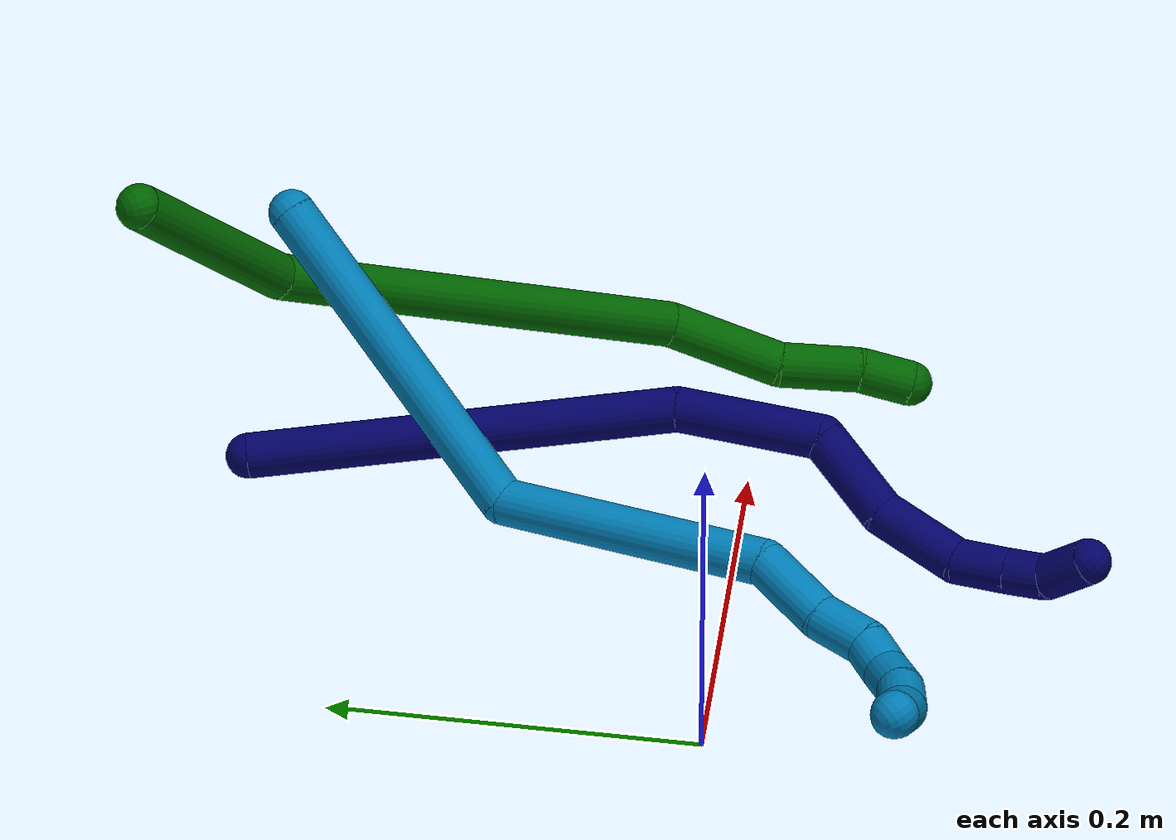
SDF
<sdf version="1.7">
 <world name="default">
  <model name="6">
   <static>0</static>
   <link name="6">
    <collision name="collision-cylinder-e_1_1_4">
     <pose>-0.015894 -0.036842 -0.04217 2.42353 -0.27656 -0.710202</pose>
     <geometry><cylinder><radius>0.0125</radius><length>0.116418</length></cylinder></geometry>
     <surface>
      <friction><ode><mu>1.16</mu><mu2>1.16</mu2><slip1>0</slip1><slip2>0</slip2></ode></friction>
      <contact><ode><kp>1e+06</kp><kd>1</kd><max_vel>0</max_vel><min_depth>0.001</min_depth></ode></contact>
     </surface>
    </collision>
    <visual name="visual-cylinder-e_1_1_4">
     <pose>-0.015894 -0.036842 -0.04217 2.42353 -0.27656 -0.710202</pose>
     <geometry><cylinder><radius>0.0125</radius><length>0.116418</length></cylinder></geometry>
     <material><ambient>0 0.392157 0.003922 1</ambient></material>
    </visual>
    <collision name="collision-cylinder-e_2_4_5">
     <pose>-0.033679 -0.121548 -0.197369 2.74102 -0.015405 -0.075851</pose>
     <geometry><cylinder><radius>0.0125</radius><length>0.245519</length></cylinder></geometry>
     <surface>
      <friction><ode><mu>1.16</mu><mu2>1.16</mu2><slip1>0</slip1><slip2>0</slip2></ode></friction>
      <contact><ode><kp>1e+06</kp><kd>1</kd><max_vel>0</max_vel><min_depth>0.001</min_depth></ode></contact>
     </surface>
    </collision>
    <visual name="visual-cylinder-e_2_4_5">
     <pose>-0.033679 -0.121548 -0.197369 2.74102 -0.015405 -0.075851</pose>
     <geometry><cylinder><radius>0.0125</radius><length>0.245519</length></cylinder></geometry>
     <material><ambient>0 0.392157 0.003922 1</ambient></material>
    </visual>
    <collision name="collision-cylinder-e_3_5_6">
     <pose>-0.019826 -0.183684 -0.334535 2.60758 0.511591 1.5259</pose>
     <geometry><cylinder><radius>0.0125</radius><length>0.064317</length></cylinder></geometry>
     <surface>
      <friction><ode><mu>1.16</mu><mu2>1.16</mu2><slip1>0</slip1><slip2>0</slip2></ode></friction>
      <contact><ode><kp>1e+06</kp><kd>1</kd><max_vel>0</max_vel><min_depth>0.001</min_depth></ode></contact>
     </surface>
    </collision>
    <visual name="visual-cylinder-e_3_5_6">
     <pose>-0.019826 -0.183684 -0.334535 2.60758 0.511591 1.5259</pose>
     <geometry><cylinder><radius>0.0125</radius><length>0.064317</length></cylinder></geometry>
     <material><ambient>0 0.392157 0.003922 1</ambient></material>
    </visual>
    <collision name="collision-cylinder-e_4_6_7">
     <pose>0.004766 -0.202615 -0.378602 2.91199 0.408064 2.12474</pose>
     <geometry><cylinder><radius>0.0125</radius><length>0.044597</length></cylinder></geometry>
     <surface>
      <friction><ode><mu>1.16</mu><mu2>1.16</mu2><slip1>0</slip1><slip2>0</slip2></ode></friction>
      <contact><ode><kp>1e+06</kp><kd>1</kd><max_vel>0</max_vel><min_depth>0.001</min_depth></ode></contact>
     </surface>
    </collision>
    <visual name="visual-cylinder-e_4_6_7">
     <pose>0.004766 -0.202615 -0.378602 2.91199 0.408064 2.12474</pose>
     <geometry><cylinder><radius>0.0125</radius><length>0.044597</length></cylinder></geometry>
     <material><ambient>0 0.392157 0.003922 1</ambient></material>
    </visual>
    <collision name="collision-cylinder-e_5_7_2">
     <pose>0.019201 -0.213105 -0.410666 2.6936 0.393311 1.43712</pose>
     <geometry><cylinder><radius>0.0125</radius><length>0.029148</length></cylinder></geometry>
     <surface>
      <friction><ode><mu>1.16</mu><mu2>1.16</mu2><slip1>0</slip1><slip2>0</slip2></ode></friction>
      <contact><ode><kp>1e+06</kp><kd>1</kd><max_vel>0</max_vel><min_depth>0.001</min_depth></ode></contact>
     </surface>
    </collision>
    <visual name="visual-cylinder-e_5_7_2">
     <pose>0.019201 -0.213105 -0.410666 2.6936 0.393311 1.43712</pose>
     <geometry><cylinder><radius>0.0125</radius><length>0.029148</length></cylinder></geometry>
     <material><ambient>0 0.392157 0.003922 1</ambient></material>
    </visual>
    <collision name="collision-sphere-2">
     <pose>0.024786 -0.218935 -0.422799 0 -0 0</pose>
     <geometry><sphere><radius>0.0125</radius></sphere></geometry>
     <surface>
      <friction><ode><mu>1.16</mu><mu2>1.16</mu2><slip1>0</slip1><slip2>0</slip2></ode></friction>
      <contact><ode><kp>1e+06</kp><kd>1</kd><max_vel>0</max_vel><min_depth>0.001</min_depth></ode></contact>
     </surface>
    </collision>
    <visual name="visual-sphere-2">
     <pose>0.024786 -0.218935 -0.422799 0 -0 0</pose>
     <geometry><sphere><radius>0.0125</radius></sphere></geometry>
     <material><ambient>0 0.392157 0.003922 1</ambient></material>
    </visual>
    <collision name="collision-sphere-7">
     <pose>0.013615 -0.207274 -0.398533 0 -0 0</pose>
     <geometry><sphere><radius>0.0125</radius></sphere></geometry>
     <surface>
      <friction><ode><mu>1.16</mu><mu2>1.16</mu2><slip1>0</slip1><slip2>0</slip2></ode></friction>
      <contact><ode><kp>1e+06</kp><kd>1</kd><max_vel>0</max_vel><min_depth>0.001</min_depth></ode></contact>
     </surface>
    </collision>
    <visual name="visual-sphere-7">
     <pose>0.013615 -0.207274 -0.398533 0 -0 0</pose>
     <geometry><sphere><radius>0.0125</radius></sphere></geometry>
     <material><ambient>0 0.392157 0.003922 1</ambient></material>
    </visual>
    <collision name="collision-sphere-6">
     <pose>-0.004083 -0.197957 -0.358672 0 -0 0</pose>
     <geometry><sphere><radius>0.0125</radius></sphere></geometry>
     <surface>
      <friction><ode><mu>1.16</mu><mu2>1.16</mu2><slip1>0</slip1><slip2>0</slip2></ode></friction>
      <contact><ode><kp>1e+06</kp><kd>1</kd><max_vel>0</max_vel><min_depth>0.001</min_depth></ode></contact>
     </surface>
    </collision>
    <visual name="visual-sphere-6">
     <pose>-0.004083 -0.197957 -0.358672 0 -0 0</pose>
     <geometry><sphere><radius>0.0125</radius></sphere></geometry>
     <material><ambient>0 0.392157 0.003922 1</ambient></material>
    </visual>
    <collision name="collision-sphere-5">
     <pose>-0.03557 -0.169412 -0.310398 0 -0 0</pose>
     <geometry><sphere><radius>0.0125</radius></sphere></geometry>
     <surface>
      <friction><ode><mu>1.16</mu><mu2>1.16</mu2><slip1>0</slip1><slip2>0</slip2></ode></friction>
      <contact><ode><kp>1e+06</kp><kd>1</kd><max_vel>0</max_vel><min_depth>0.001</min_depth></ode></contact>
     </surface>
    </collision>
    <visual name="visual-sphere-5">
     <pose>-0.03557 -0.169412 -0.310398 0 -0 0</pose>
     <geometry><sphere><radius>0.0125</radius></sphere></geometry>
     <material><ambient>0 0.392157 0.003922 1</ambient></material>
    </visual>
    <collision name="collision-sphere-1">
     <geometry><sphere><radius>0.0125</radius></sphere></geometry>
     <surface>
      <friction><ode><mu>1.16</mu><mu2>1.16</mu2><slip1>0</slip1><slip2>0</slip2></ode></friction>
      <contact><ode><kp>1e+06</kp><kd>1</kd><max_vel>0</max_vel><min_depth>0.001</min_depth></ode></contact>
     </surface>
    </collision>
    <visual name="visual-sphere-1">
     <geometry><sphere><radius>0.0125</radius></sphere></geometry>
     <material><ambient>0 0.392157 0.003922 1</ambient></material>
    </visual>
    <collision name="collision-sphere-4">
     <pose>-0.031788 -0.073684 -0.084341 0 -0 0</pose>
     <geometry><sphere><radius>0.0125</radius></sphere></geometry>
     <surface>
      <friction><ode><mu>1.16</mu><mu2>1.16</mu2><slip1>0</slip1><slip2>0</slip2></ode></friction>
      <contact><ode><kp>1e+06</kp><kd>1</kd><max_vel>0</max_vel><min_depth>0.001</min_depth></ode></contact>
     </surface>
    </collision>
    <visual name="visual-sphere-4">
     <pose>-0.031788 -0.073684 -0.084341 0 -0 0</pose>
     <geometry><sphere><radius>0.0125</radius></sphere></geometry>
     <material><ambient>0 0.392157 0.003922 1</ambient></material>
    </visual>
    <inertial>
     <pose>-0.021244 -0.122386 -0.207477 0 -0 0</pose>
     <mass>0.5</mass>
     <inertia>
      <ixx>0.001189</ixx>
      <ixy>0</ixy>
      <ixz>0</ixz>
      <iyy>-0.001357</iyy>
      <iyz>0</iyz>
      <izz>0.000591</izz>
     </inertia>
    </inertial>
   </link>
   <pose>0.12007 0.311104 0.23494 1.49951 -0.366919 -2.48948</pose>
  </model>
  <model name="7">
   <static>0</static>
   <link name="7">
    <collision name="collision-cylinder-e_1_1_4">
     <pose>0.024356 -0.090355 0.071676 0.900174 0.208122 0.100836</pose>
     <geometry><cylinder><radius>0.0125</radius><length>0.235752</length></cylinder></geometry>
     <surface>
      <friction><ode><mu>1.16</mu><mu2>1.16</mu2><slip1>0</slip1><slip2>0</slip2></ode></friction>
      <contact><ode><kp>1e+06</kp><kd>1</kd><max_vel>0</max_vel><min_depth>0.001</min_depth></ode></contact>
     </surface>
    </collision>
    <visual name="visual-cylinder-e_1_1_4">
     <pose>0.024356 -0.090355 0.071676 0.900174 0.208122 0.100836</pose>
     <geometry><cylinder><radius>0.0125</radius><length>0.235752</length></cylinder></geometry>
     <material><ambient>0.003922 0 0.403922 1</ambient></material>
    </visual>
    <collision name="collision-cylinder-e_2_4_5">
     <pose>0.065968 -0.202044 0.173956 0.608757 0.433247 0.13805</pose>
     <geometry><cylinder><radius>0.0125</radius><length>0.082208</length></cylinder></geometry>
     <surface>
      <friction><ode><mu>1.16</mu><mu2>1.16</mu2><slip1>0</slip1><slip2>0</slip2></ode></friction>
      <contact><ode><kp>1e+06</kp><kd>1</kd><max_vel>0</max_vel><min_depth>0.001</min_depth></ode></contact>
     </surface>
    </collision>
    <visual name="visual-cylinder-e_2_4_5">
     <pose>0.065968 -0.202044 0.173956 0.608757 0.433247 0.13805</pose>
     <geometry><cylinder><radius>0.0125</radius><length>0.082208</length></cylinder></geometry>
     <material><ambient>0.003922 0 0.403922 1</ambient></material>
    </visual>
    <collision name="collision-cylinder-e_3_5_6">
     <pose>0.091905 -0.219734 0.228876 -0.148743 0.339398 -0.025532</pose>
     <geometry><cylinder><radius>0.0125</radius><length>0.052147</length></cylinder></geometry>
     <surface>
      <friction><ode><mu>1.16</mu><mu2>1.16</mu2><slip1>0</slip1><slip2>0</slip2></ode></friction>
      <contact><ode><kp>1e+06</kp><kd>1</kd><max_vel>0</max_vel><min_depth>0.001</min_depth></ode></contact>
     </surface>
    </collision>
    <visual name="visual-cylinder-e_3_5_6">
     <pose>0.091905 -0.219734 0.228876 -0.148743 0.339398 -0.025532</pose>
     <geometry><cylinder><radius>0.0125</radius><length>0.052147</length></cylinder></geometry>
     <material><ambient>0.003922 0 0.403922 1</ambient></material>
    </visual>
    <collision name="collision-cylinder-e_4_6_7">
     <pose>0.113236 -0.220224 0.274365 0.192775 0.530365 0.052504</pose>
     <geometry><cylinder><radius>0.0125</radius><length>0.05002</length></cylinder></geometry>
     <surface>
      <friction><ode><mu>1.16</mu><mu2>1.16</mu2><slip1>0</slip1><slip2>0</slip2></ode></friction>
      <contact><ode><kp>1e+06</kp><kd>1</kd><max_vel>0</max_vel><min_depth>0.001</min_depth></ode></contact>
     </surface>
    </collision>
    <visual name="visual-cylinder-e_4_6_7">
     <pose>0.113236 -0.220224 0.274365 0.192775 0.530365 0.052504</pose>
     <geometry><cylinder><radius>0.0125</radius><length>0.05002</length></cylinder></geometry>
     <material><ambient>0.003922 0 0.403922 1</ambient></material>
    </visual>
    <collision name="collision-cylinder-e_5_7_8">
     <pose>0.133552 -0.231791 0.305862 0.624114 0.542308 0.178886</pose>
     <geometry><cylinder><radius>0.0125</radius><length>0.029702</length></cylinder></geometry>
     <surface>
      <friction><ode><mu>1.16</mu><mu2>1.16</mu2><slip1>0</slip1><slip2>0</slip2></ode></friction>
      <contact><ode><kp>1e+06</kp><kd>1</kd><max_vel>0</max_vel><min_depth>0.001</min_depth></ode></contact>
     </surface>
    </collision>
    <visual name="visual-cylinder-e_5_7_8">
     <pose>0.133552 -0.231791 0.305862 0.624114 0.542308 0.178886</pose>
     <geometry><cylinder><radius>0.0125</radius><length>0.029702</length></cylinder></geometry>
     <material><ambient>0.003922 0 0.403922 1</ambient></material>
    </visual>
    <collision name="collision-cylinder-e_6_8_9">
     <pose>0.146719 -0.244769 0.323358 0.657993 0.545373 0.190372</pose>
     <geometry><cylinder><radius>0.0125</radius><length>0.021212</length></cylinder></geometry>
     <surface>
      <friction><ode><mu>1.16</mu><mu2>1.16</mu2><slip1>0</slip1><slip2>0</slip2></ode></friction>
      <contact><ode><kp>1e+06</kp><kd>1</kd><max_vel>0</max_vel><min_depth>0.001</min_depth></ode></contact>
     </surface>
    </collision>
    <visual name="visual-cylinder-e_6_8_9">
     <pose>0.146719 -0.244769 0.323358 0.657993 0.545373 0.190372</pose>
     <geometry><cylinder><radius>0.0125</radius><length>0.021212</length></cylinder></geometry>
     <material><ambient>0.003922 0 0.403922 1</ambient></material>
    </visual>
    <collision name="collision-cylinder-e_7_9_2">
     <pose>0.162087 -0.260519 0.333393 1.29752 0.749664 0.57983</pose>
     <geometry><cylinder><radius>0.0125</radius><length>0.028959</length></cylinder></geometry>
     <surface>
      <friction><ode><mu>1.16</mu><mu2>1.16</mu2><slip1>0</slip1><slip2>0</slip2></ode></friction>
      <contact><ode><kp>1e+06</kp><kd>1</kd><max_vel>0</max_vel><min_depth>0.001</min_depth></ode></contact>
     </surface>
    </collision>
    <visual name="visual-cylinder-e_7_9_2">
     <pose>0.162087 -0.260519 0.333393 1.29752 0.749664 0.57983</pose>
     <geometry><cylinder><radius>0.0125</radius><length>0.028959</length></cylinder></geometry>
     <material><ambient>0.003922 0 0.403922 1</ambient></material>
    </visual>
    <collision name="collision-sphere-2">
     <pose>0.171953 -0.270723 0.336253 0 -0 0</pose>
     <geometry><sphere><radius>0.0125</radius></sphere></geometry>
     <surface>
      <friction><ode><mu>1.16</mu><mu2>1.16</mu2><slip1>0</slip1><slip2>0</slip2></ode></friction>
      <contact><ode><kp>1e+06</kp><kd>1</kd><max_vel>0</max_vel><min_depth>0.001</min_depth></ode></contact>
     </surface>
    </collision>
    <visual name="visual-sphere-2">
     <pose>0.171953 -0.270723 0.336253 0 -0 0</pose>
     <geometry><sphere><radius>0.0125</radius></sphere></geometry>
     <material><ambient>0.003922 0 0.403922 1</ambient></material>
    </visual>
    <collision name="collision-sphere-9">
     <pose>0.152221 -0.250314 0.330533 0 -0 0</pose>
     <geometry><sphere><radius>0.0125</radius></sphere></geometry>
     <surface>
      <friction><ode><mu>1.16</mu><mu2>1.16</mu2><slip1>0</slip1><slip2>0</slip2></ode></friction>
      <contact><ode><kp>1e+06</kp><kd>1</kd><max_vel>0</max_vel><min_depth>0.001</min_depth></ode></contact>
     </surface>
    </collision>
    <visual name="visual-sphere-9">
     <pose>0.152221 -0.250314 0.330533 0 -0 0</pose>
     <geometry><sphere><radius>0.0125</radius></sphere></geometry>
     <material><ambient>0.003922 0 0.403922 1</ambient></material>
    </visual>
    <collision name="collision-sphere-4">
     <pose>0.048712 -0.180711 0.143352 0 -0 0</pose>
     <geometry><sphere><radius>0.0125</radius></sphere></geometry>
     <surface>
      <friction><ode><mu>1.16</mu><mu2>1.16</mu2><slip1>0</slip1><slip2>0</slip2></ode></friction>
      <contact><ode><kp>1e+06</kp><kd>1</kd><max_vel>0</max_vel><min_depth>0.001</min_depth></ode></contact>
     </surface>
    </collision>
    <visual name="visual-sphere-4">
     <pose>0.048712 -0.180711 0.143352 0 -0 0</pose>
     <geometry><sphere><radius>0.0125</radius></sphere></geometry>
     <material><ambient>0.003922 0 0.403922 1</ambient></material>
    </visual>
    <collision name="collision-sphere-1">
     <geometry><sphere><radius>0.0125</radius></sphere></geometry>
     <surface>
      <friction><ode><mu>1.16</mu><mu2>1.16</mu2><slip1>0</slip1><slip2>0</slip2></ode></friction>
      <contact><ode><kp>1e+06</kp><kd>1</kd><max_vel>0</max_vel><min_depth>0.001</min_depth></ode></contact>
     </surface>
    </collision>
    <visual name="visual-sphere-1">
     <geometry><sphere><radius>0.0125</radius></sphere></geometry>
     <material><ambient>0.003922 0 0.403922 1</ambient></material>
    </visual>
    <collision name="collision-sphere-8">
     <pose>0.141217 -0.239224 0.316184 0 -0 0</pose>
     <geometry><sphere><radius>0.0125</radius></sphere></geometry>
     <surface>
      <friction><ode><mu>1.16</mu><mu2>1.16</mu2><slip1>0</slip1><slip2>0</slip2></ode></friction>
      <contact><ode><kp>1e+06</kp><kd>1</kd><max_vel>0</max_vel><min_depth>0.001</min_depth></ode></contact>
     </surface>
    </collision>
    <visual name="visual-sphere-8">
     <pose>0.141217 -0.239224 0.316184 0 -0 0</pose>
     <geometry><sphere><radius>0.0125</radius></sphere></geometry>
     <material><ambient>0.003922 0 0.403922 1</ambient></material>
    </visual>
    <collision name="collision-sphere-5">
     <pose>0.083224 -0.223378 0.204561 0 -0 0</pose>
     <geometry><sphere><radius>0.0125</radius></sphere></geometry>
     <surface>
      <friction><ode><mu>1.16</mu><mu2>1.16</mu2><slip1>0</slip1><slip2>0</slip2></ode></friction>
      <contact><ode><kp>1e+06</kp><kd>1</kd><max_vel>0</max_vel><min_depth>0.001</min_depth></ode></contact>
     </surface>
    </collision>
    <visual name="visual-sphere-5">
     <pose>0.083224 -0.223378 0.204561 0 -0 0</pose>
     <geometry><sphere><radius>0.0125</radius></sphere></geometry>
     <material><ambient>0.003922 0 0.403922 1</ambient></material>
    </visual>
    <collision name="collision-sphere-6">
     <pose>0.100585 -0.216091 0.25319 0 -0 0</pose>
     <geometry><sphere><radius>0.0125</radius></sphere></geometry>
     <surface>
      <friction><ode><mu>1.16</mu><mu2>1.16</mu2><slip1>0</slip1><slip2>0</slip2></ode></friction>
      <contact><ode><kp>1e+06</kp><kd>1</kd><max_vel>0</max_vel><min_depth>0.001</min_depth></ode></contact>
     </surface>
    </collision>
    <visual name="visual-sphere-6">
     <pose>0.100585 -0.216091 0.25319 0 -0 0</pose>
     <geometry><sphere><radius>0.0125</radius></sphere></geometry>
     <material><ambient>0.003922 0 0.403922 1</ambient></material>
    </visual>
    <collision name="collision-sphere-7">
     <pose>0.125887 -0.224357 0.295539 0 -0 0</pose>
     <geometry><sphere><radius>0.0125</radius></sphere></geometry>
     <surface>
      <friction><ode><mu>1.16</mu><mu2>1.16</mu2><slip1>0</slip1><slip2>0</slip2></ode></friction>
      <contact><ode><kp>1e+06</kp><kd>1</kd><max_vel>0</max_vel><min_depth>0.001</min_depth></ode></contact>
     </surface>
    </collision>
    <visual name="visual-sphere-7">
     <pose>0.125887 -0.224357 0.295539 0 -0 0</pose>
     <geometry><sphere><radius>0.0125</radius></sphere></geometry>
     <material><ambient>0.003922 0 0.403922 1</ambient></material>
    </visual>
    <inertial>
     <pose>0.066789 -0.160012 0.164912 0 -0 0</pose>
     <mass>0.5</mass>
     <inertia>
      <ixx>0.001277</ixx>
      <ixy>0</ixy>
      <ixz>0</ixz>
      <iyy>0.000868</iyy>
      <iyz>0</iyz>
      <izz>0.000637</izz>
     </inertia>
    </inertial>
   </link>
   <pose>0.170204 0.271317 0.012432 -2.48549 -0.652117 -2.79258</pose>
  </model>
  <model name="9">
   <static>0</static>
   <link name="9">
    <collision name="collision-cylinder-e_1_1_4">
     <pose>-0.004017 -0.095849 0.001243 1.55783 -0.04188 -0.041341</pose>
     <geometry><cylinder><radius>0.0125</radius><length>0.191883</length></cylinder></geometry>
     <surface>
      <friction><ode><mu>1.16</mu><mu2>1.16</mu2><slip1>0</slip1><slip2>0</slip2></ode></friction>
      <contact><ode><kp>1e+06</kp><kd>1</kd><max_vel>0</max_vel><min_depth>0.001</min_depth></ode></contact>
     </surface>
    </collision>
    <visual name="visual-cylinder-e_1_1_4">
     <pose>-0.004017 -0.095849 0.001243 1.55783 -0.04188 -0.041341</pose>
     <geometry><cylinder><radius>0.0125</radius><length>0.191883</length></cylinder></geometry>
     <material><ambient>0 0.490196 0.709804 1</ambient></material>
    </visual>
    <collision name="collision-cylinder-e_2_4_5">
     <pose>-0.040604 -0.246193 0.042583 0.93644 -0.448658 -0.229768</pose>
     <geometry><cylinder><radius>0.0125</radius><length>0.150177</length></cylinder></geometry>
     <surface>
      <friction><ode><mu>1.16</mu><mu2>1.16</mu2><slip1>0</slip1><slip2>0</slip2></ode></friction>
      <contact><ode><kp>1e+06</kp><kd>1</kd><max_vel>0</max_vel><min_depth>0.001</min_depth></ode></contact>
     </surface>
    </collision>
    <visual name="visual-cylinder-e_2_4_5">
     <pose>-0.040604 -0.246193 0.042583 0.93644 -0.448658 -0.229768</pose>
     <geometry><cylinder><radius>0.0125</radius><length>0.150177</length></cylinder></geometry>
     <material><ambient>0 0.490196 0.709804 1</ambient></material>
    </visual>
    <collision name="collision-cylinder-e_3_5_6">
     <pose>-0.082205 -0.321122 0.084165 1.49827 -0.415171 -0.386846</pose>
     <geometry><cylinder><radius>0.0125</radius><length>0.044779</length></cylinder></geometry>
     <surface>
      <friction><ode><mu>1.16</mu><mu2>1.16</mu2><slip1>0</slip1><slip2>0</slip2></ode></friction>
      <contact><ode><kp>1e+06</kp><kd>1</kd><max_vel>0</max_vel><min_depth>0.001</min_depth></ode></contact>
     </surface>
    </collision>
    <visual name="visual-cylinder-e_3_5_6">
     <pose>-0.082205 -0.321122 0.084165 1.49827 -0.415171 -0.386846</pose>
     <geometry><cylinder><radius>0.0125</radius><length>0.044779</length></cylinder></geometry>
     <material><ambient>0 0.490196 0.709804 1</ambient></material>
    </visual>
    <collision name="collision-cylinder-e_4_6_7">
     <pose>-0.097529 -0.354147 0.0899 1.2453 -0.442254 -0.320021</pose>
     <geometry><cylinder><radius>0.0125</radius><length>0.029408</length></cylinder></geometry>
     <surface>
      <friction><ode><mu>1.16</mu><mu2>1.16</mu2><slip1>0</slip1><slip2>0</slip2></ode></friction>
      <contact><ode><kp>1e+06</kp><kd>1</kd><max_vel>0</max_vel><min_depth>0.001</min_depth></ode></contact>
     </surface>
    </collision>
    <visual name="visual-cylinder-e_4_6_7">
     <pose>-0.097529 -0.354147 0.0899 1.2453 -0.442254 -0.320021</pose>
     <geometry><cylinder><radius>0.0125</radius><length>0.029408</length></cylinder></geometry>
     <material><ambient>0 0.490196 0.709804 1</ambient></material>
    </visual>
    <collision name="collision-cylinder-e_5_7_8">
     <pose>-0.10842 -0.375711 0.092838 1.71594 -0.469315 -0.539604</pose>
     <geometry><cylinder><radius>0.0125</radius><length>0.020334</length></cylinder></geometry>
     <surface>
      <friction><ode><mu>1.16</mu><mu2>1.16</mu2><slip1>0</slip1><slip2>0</slip2></ode></friction>
      <contact><ode><kp>1e+06</kp><kd>1</kd><max_vel>0</max_vel><min_depth>0.001</min_depth></ode></contact>
     </surface>
    </collision>
    <visual name="visual-cylinder-e_5_7_8">
     <pose>-0.10842 -0.375711 0.092838 1.71594 -0.469315 -0.539604</pose>
     <geometry><cylinder><radius>0.0125</radius><length>0.020334</length></cylinder></geometry>
     <material><ambient>0 0.490196 0.709804 1</ambient></material>
    </visual>
    <collision name="collision-cylinder-e_6_8_9">
     <pose>-0.122094 -0.391087 0.08941 1.89002 -0.93167 -1.21561</pose>
     <geometry><cylinder><radius>0.0125</radius><length>0.022614</length></cylinder></geometry>
     <surface>
      <friction><ode><mu>1.16</mu><mu2>1.16</mu2><slip1>0</slip1><slip2>0</slip2></ode></friction>
      <contact><ode><kp>1e+06</kp><kd>1</kd><max_vel>0</max_vel><min_depth>0.001</min_depth></ode></contact>
     </surface>
    </collision>
    <visual name="visual-cylinder-e_6_8_9">
     <pose>-0.122094 -0.391087 0.08941 1.89002 -0.93167 -1.21561</pose>
     <geometry><cylinder><radius>0.0125</radius><length>0.022614</length></cylinder></geometry>
     <material><ambient>0 0.490196 0.709804 1</ambient></material>
    </visual>
    <collision name="collision-cylinder-e_7_9_10">
     <pose>-0.139023 -0.402321 0.082744 2.32631 -0.86932 -1.64317</pose>
     <geometry><cylinder><radius>0.0125</radius><length>0.020563</length></cylinder></geometry>
     <surface>
      <friction><ode><mu>1.16</mu><mu2>1.16</mu2><slip1>0</slip1><slip2>0</slip2></ode></friction>
      <contact><ode><kp>1e+06</kp><kd>1</kd><max_vel>0</max_vel><min_depth>0.001</min_depth></ode></contact>
     </surface>
    </collision>
    <visual name="visual-cylinder-e_7_9_10">
     <pose>-0.139023 -0.402321 0.082744 2.32631 -0.86932 -1.64317</pose>
     <geometry><cylinder><radius>0.0125</radius><length>0.020563</length></cylinder></geometry>
     <material><ambient>0 0.490196 0.709804 1</ambient></material>
    </visual>
    <collision name="collision-cylinder-e_8_10_2">
     <pose>-0.155679 -0.407603 0.07322 3.05101 -1.05473 -2.98626</pose>
     <geometry><cylinder><radius>0.0125</radius><length>0.020241</length></cylinder></geometry>
     <surface>
      <friction><ode><mu>1.16</mu><mu2>1.16</mu2><slip1>0</slip1><slip2>0</slip2></ode></friction>
      <contact><ode><kp>1e+06</kp><kd>1</kd><max_vel>0</max_vel><min_depth>0.001</min_depth></ode></contact>
     </surface>
    </collision>
    <visual name="visual-cylinder-e_8_10_2">
     <pose>-0.155679 -0.407603 0.07322 3.05101 -1.05473 -2.98626</pose>
     <geometry><cylinder><radius>0.0125</radius><length>0.020241</length></cylinder></geometry>
     <material><ambient>0 0.490196 0.709804 1</ambient></material>
    </visual>
    <collision name="collision-sphere-2">
     <pose>-0.164482 -0.408054 0.068247 0 -0 0</pose>
     <geometry><sphere><radius>0.0125</radius></sphere></geometry>
     <surface>
      <friction><ode><mu>1.16</mu><mu2>1.16</mu2><slip1>0</slip1><slip2>0</slip2></ode></friction>
      <contact><ode><kp>1e+06</kp><kd>1</kd><max_vel>0</max_vel><min_depth>0.001</min_depth></ode></contact>
     </surface>
    </collision>
    <visual name="visual-sphere-2">
     <pose>-0.164482 -0.408054 0.068247 0 -0 0</pose>
     <geometry><sphere><radius>0.0125</radius></sphere></geometry>
     <material><ambient>0 0.490196 0.709804 1</ambient></material>
    </visual>
    <collision name="collision-sphere-10">
     <pose>-0.146877 -0.407151 0.078194 0 -0 0</pose>
     <geometry><sphere><radius>0.0125</radius></sphere></geometry>
     <surface>
      <friction><ode><mu>1.16</mu><mu2>1.16</mu2><slip1>0</slip1><slip2>0</slip2></ode></friction>
      <contact><ode><kp>1e+06</kp><kd>1</kd><max_vel>0</max_vel><min_depth>0.001</min_depth></ode></contact>
     </surface>
    </collision>
    <visual name="visual-sphere-10">
     <pose>-0.146877 -0.407151 0.078194 0 -0 0</pose>
     <geometry><sphere><radius>0.0125</radius></sphere></geometry>
     <material><ambient>0 0.490196 0.709804 1</ambient></material>
    </visual>
    <collision name="collision-sphere-9">
     <pose>-0.131169 -0.397491 0.087293 0 -0 0</pose>
     <geometry><sphere><radius>0.0125</radius></sphere></geometry>
     <surface>
      <friction><ode><mu>1.16</mu><mu2>1.16</mu2><slip1>0</slip1><slip2>0</slip2></ode></friction>
      <contact><ode><kp>1e+06</kp><kd>1</kd><max_vel>0</max_vel><min_depth>0.001</min_depth></ode></contact>
     </surface>
    </collision>
    <visual name="visual-sphere-9">
     <pose>-0.131169 -0.397491 0.087293 0 -0 0</pose>
     <geometry><sphere><radius>0.0125</radius></sphere></geometry>
     <material><ambient>0 0.490196 0.709804 1</ambient></material>
    </visual>
    <collision name="collision-sphere-4">
     <pose>-0.008034 -0.191699 0.002486 0 -0 0</pose>
     <geometry><sphere><radius>0.0125</radius></sphere></geometry>
     <surface>
      <friction><ode><mu>1.16</mu><mu2>1.16</mu2><slip1>0</slip1><slip2>0</slip2></ode></friction>
      <contact><ode><kp>1e+06</kp><kd>1</kd><max_vel>0</max_vel><min_depth>0.001</min_depth></ode></contact>
     </surface>
    </collision>
    <visual name="visual-sphere-4">
     <pose>-0.008034 -0.191699 0.002486 0 -0 0</pose>
     <geometry><sphere><radius>0.0125</radius></sphere></geometry>
     <material><ambient>0 0.490196 0.709804 1</ambient></material>
    </visual>
    <collision name="collision-sphere-1">
     <geometry><sphere><radius>0.0125</radius></sphere></geometry>
     <surface>
      <friction><ode><mu>1.16</mu><mu2>1.16</mu2><slip1>0</slip1><slip2>0</slip2></ode></friction>
      <contact><ode><kp>1e+06</kp><kd>1</kd><max_vel>0</max_vel><min_depth>0.001</min_depth></ode></contact>
     </surface>
    </collision>
    <visual name="visual-sphere-1">
     <geometry><sphere><radius>0.0125</radius></sphere></geometry>
     <material><ambient>0 0.490196 0.709804 1</ambient></material>
    </visual>
    <collision name="collision-sphere-8">
     <pose>-0.113018 -0.384683 0.091526 0 -0 0</pose>
     <geometry><sphere><radius>0.0125</radius></sphere></geometry>
     <surface>
      <friction><ode><mu>1.16</mu><mu2>1.16</mu2><slip1>0</slip1><slip2>0</slip2></ode></friction>
      <contact><ode><kp>1e+06</kp><kd>1</kd><max_vel>0</max_vel><min_depth>0.001</min_depth></ode></contact>
     </surface>
    </collision>
    <visual name="visual-sphere-8">
     <pose>-0.113018 -0.384683 0.091526 0 -0 0</pose>
     <geometry><sphere><radius>0.0125</radius></sphere></geometry>
     <material><ambient>0 0.490196 0.709804 1</ambient></material>
    </visual>
    <collision name="collision-sphere-5">
     <pose>-0.073174 -0.300688 0.082681 0 -0 0</pose>
     <geometry><sphere><radius>0.0125</radius></sphere></geometry>
     <surface>
      <friction><ode><mu>1.16</mu><mu2>1.16</mu2><slip1>0</slip1><slip2>0</slip2></ode></friction>
      <contact><ode><kp>1e+06</kp><kd>1</kd><max_vel>0</max_vel><min_depth>0.001</min_depth></ode></contact>
     </surface>
    </collision>
    <visual name="visual-sphere-5">
     <pose>-0.073174 -0.300688 0.082681 0 -0 0</pose>
     <geometry><sphere><radius>0.0125</radius></sphere></geometry>
     <material><ambient>0 0.490196 0.709804 1</ambient></material>
    </visual>
    <collision name="collision-sphere-6">
     <pose>-0.091236 -0.341556 0.08565 0 -0 0</pose>
     <geometry><sphere><radius>0.0125</radius></sphere></geometry>
     <surface>
      <friction><ode><mu>1.16</mu><mu2>1.16</mu2><slip1>0</slip1><slip2>0</slip2></ode></friction>
      <contact><ode><kp>1e+06</kp><kd>1</kd><max_vel>0</max_vel><min_depth>0.001</min_depth></ode></contact>
     </surface>
    </collision>
    <visual name="visual-sphere-6">
     <pose>-0.091236 -0.341556 0.08565 0 -0 0</pose>
     <geometry><sphere><radius>0.0125</radius></sphere></geometry>
     <material><ambient>0 0.490196 0.709804 1</ambient></material>
    </visual>
    <collision name="collision-sphere-7">
     <pose>-0.103822 -0.366738 0.094149 0 -0 0</pose>
     <geometry><sphere><radius>0.0125</radius></sphere></geometry>
     <surface>
      <friction><ode><mu>1.16</mu><mu2>1.16</mu2><slip1>0</slip1><slip2>0</slip2></ode></friction>
      <contact><ode><kp>1e+06</kp><kd>1</kd><max_vel>0</max_vel><min_depth>0.001</min_depth></ode></contact>
     </surface>
    </collision>
    <visual name="visual-sphere-7">
     <pose>-0.103822 -0.366738 0.094149 0 -0 0</pose>
     <geometry><sphere><radius>0.0125</radius></sphere></geometry>
     <material><ambient>0 0.490196 0.709804 1</ambient></material>
    </visual>
    <inertial>
     <pose>-0.048787 -0.226332 0.040279 0 -0 0</pose>
     <mass>0.5</mass>
     <inertia>
      <ixx>0.000756</ixx>
      <ixy>0</ixy>
      <ixz>0</ixz>
      <iyy>8.2e-05</iyy>
      <iyz>0</iyz>
      <izz>0.000984</izz>
     </inertia>
    </inertial>
   </link>
   <pose>0.189147 0.244981 0.177533 1.18129 0.981347 0.406763</pose>
  </model>
 </world>
</sdf>
